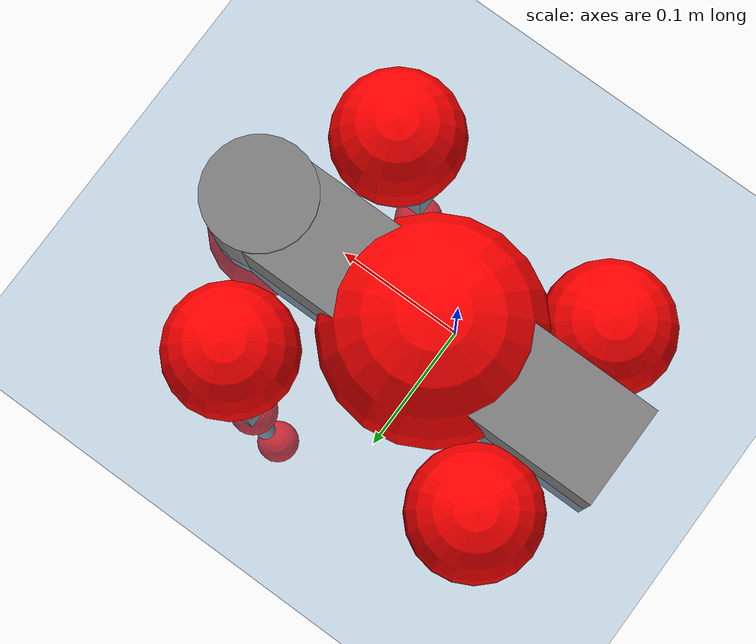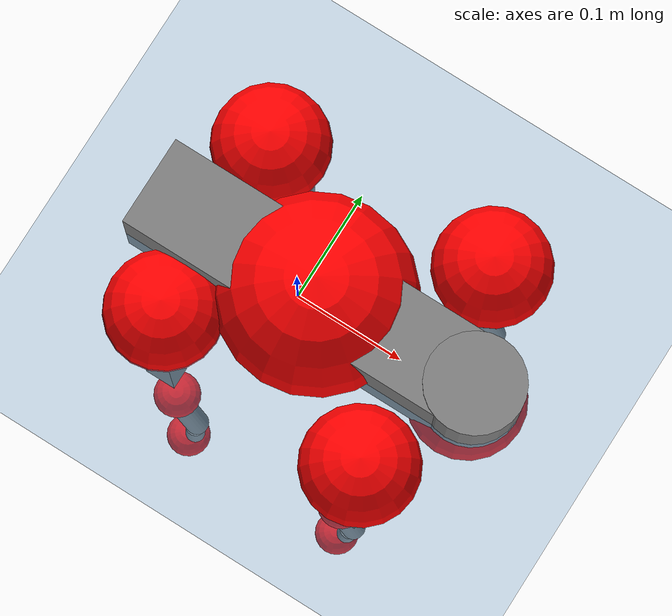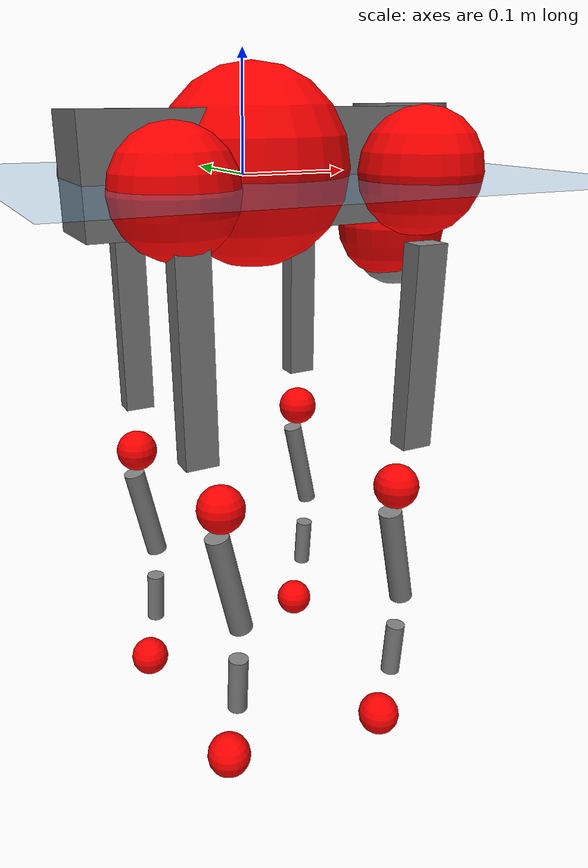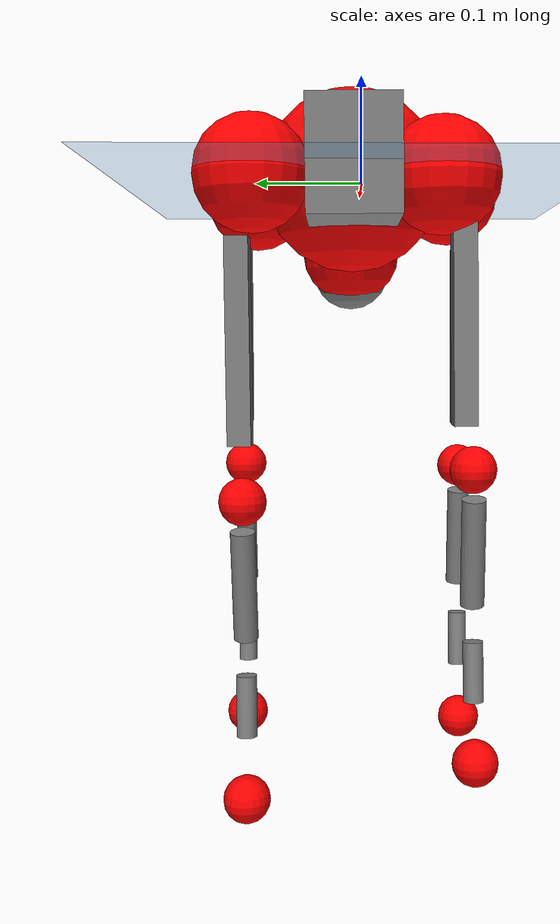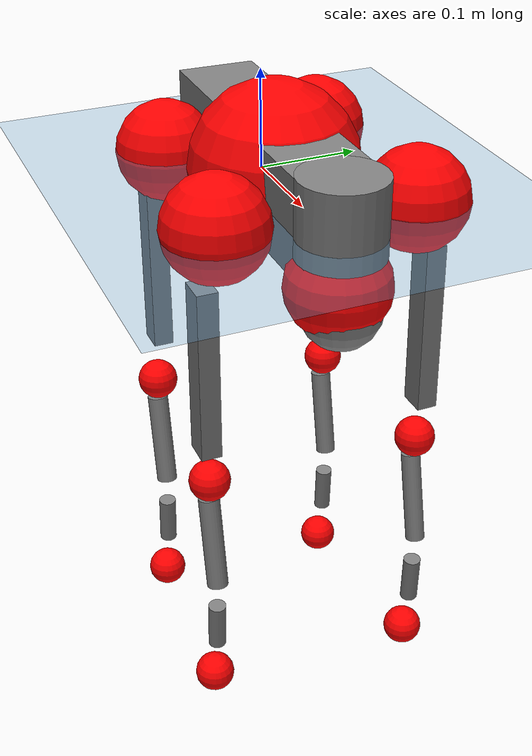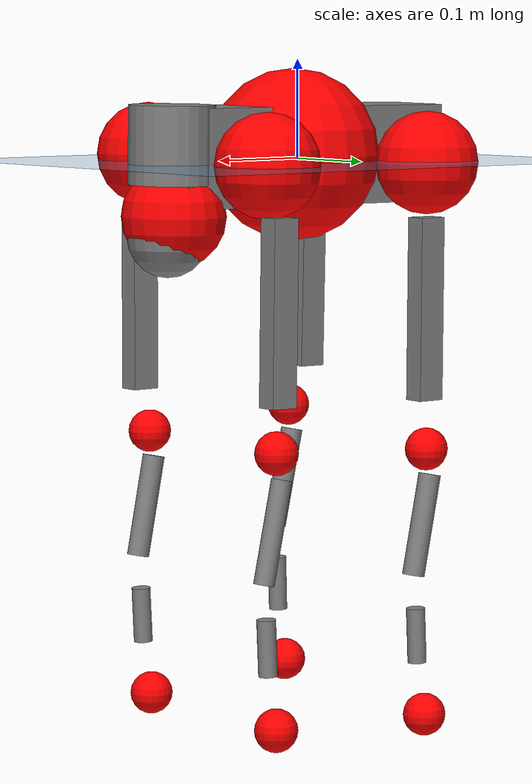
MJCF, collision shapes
<mujoco model="go2">
  <compiler angle="radian" assetdir="assets" balanceinertia="true" inertiafromgeom="false"/>

  <option timestep="0.005" density="1.2" viscosity="2e-05"/>

  <size nkey="1"/>

  <visual>
    <quality shadowsize="8192"/>
    <map shadowclip="0.5"/>
  </visual>

  <default>
    <default class="/">
      <geom contype="0" conaffinity="0" group="1" solref="-1000 -80"/>
      <site size="0.01 0.005 0.005" group="5"/>
      <general forcelimited="true" biastype="affine" gainprm="20" biasprm="0 -20 -0.5"/>
      <default class="go2">
        <joint armature="0.01" damping="0.01" frictionloss="0.2"/>
        <geom condim="1" margin="0.001"/>
        <default class="visual">
          <geom type="mesh" group="2"/>
        </default>
        <default class="collision">
          <geom group="3"/>
          <default class="foot">
            <geom size="0.022 0 0" condim="6" priority="1" friction="0.8 0.02 0.01" solimp="0.015 1 0.022"/>
          </default>
        </default>
        <default class="reward_collision_sphere">
          <geom group="5" rgba="1 0 0 1"/>
        </default>
      </default>
    </default>
  </default>

  <asset>
    <texture type="skybox" colorspace="auto" name="//unnamed_texture_0" builtin="gradient" rgb1="0.95 0.95 0.95" rgb2="0.95 0.95 0.95" width="100" height="600"/>
    <texture type="2d" colorspace="auto" name="texplane" builtin="checker" rgb1="0.345 0.575 0.748" rgb2="0.345 0.575 0.748" markrgb="1 1 1" width="512" height="512"/>
    <material name="MatPlane" class="/" texture="texplane" texuniform="true" texrepeat="2 2" specular="0.9"/>
    <material name="metal" class="/" rgba="0.9 0.95 0.95 1"/>
    <material name="black" class="/" rgba="0 0 0 1"/>
    <material name="white" class="/"/>
    <material name="gray" class="/" rgba="0.671705 0.692426 0.77427 1"/>
    <mesh name="base_0" class="/" file="base_0.obj"/>
    <mesh name="base_1" class="/" file="base_1.obj"/>
    <mesh name="base_2" class="/" file="base_2.obj"/>
    <mesh name="base_3" class="/" file="base_3.obj"/>
    <mesh name="base_4" class="/" file="base_4.obj"/>
    <mesh name="hip_0" class="/" file="hip_0.obj"/>
    <mesh name="hip_1" class="/" file="hip_1.obj"/>
    <mesh name="thigh_0" class="/" file="thigh_0.obj"/>
    <mesh name="thigh_1" class="/" file="thigh_1.obj"/>
    <mesh name="thigh_mirror_0" class="/" file="thigh_mirror_0.obj"/>
    <mesh name="thigh_mirror_1" class="/" file="thigh_mirror_1.obj"/>
    <mesh name="calf_0" class="/" file="calf_0.obj"/>
    <mesh name="calf_1" class="/" file="calf_1.obj"/>
    <mesh name="calf_mirror_0" class="/" file="calf_mirror_0.obj"/>
    <mesh name="calf_mirror_1" class="/" file="calf_mirror_1.obj"/>
    <mesh name="foot" class="/" file="foot.obj"/>
  </asset>

  <worldbody>
    <geom name="floor" class="/" size="100 100 0.125" type="plane" group="0" material="MatPlane"/>
    <light name="toplight_shadow" class="/" pos="0 0 5" dir="0.0990148 0.0990148 -0.990148" type="directional" ambient="0.04 0.04 0.04" diffuse="0.55 0.55 0.55" specular="0.12 0.12 0.12"/>
    <light name="toplight_fill" class="/" pos="0 0 5" dir="0.0990148 0.0990148 -0.990148" type="directional" castshadow="false" ambient="0.04 0.04 0.04" diffuse="0.3 0.3 0.3" specular="0.08 0.08 0.08"/>
    <body name="trunk" childclass="go2" pos="0.0129199 0.00873429 0.00484306" quat="0.999987 -0.00480069 -0.00185137 2.34804e-06">
      <inertial pos="0.024922 0.000421531 -0.00703661" quat="-0.0125799 0.714147 0.0186036 0.699635" mass="4.22568" diaginertia="0.0048606 0.0273433 0.0723756"/>
      <joint name="//unnamed_joint_0" type="free" armature="0" damping="0" frictionloss="0"/>
      <geom name="//unnamed_geom_1" class="visual" material="black" mesh="base_0"/>
      <geom name="//unnamed_geom_2" class="visual" material="black" mesh="base_1"/>
      <geom name="//unnamed_geom_3" class="visual" material="black" mesh="base_2"/>
      <geom name="//unnamed_geom_4" class="visual" material="white" mesh="base_3"/>
      <geom name="//unnamed_geom_5" class="visual" material="gray" mesh="base_4"/>
      <geom name="trunk_1" class="collision" size="0.162886 0.0404833 0.0493594" type="box"/>
      <geom name="trunk_2" class="collision" size="0.0432977 0.0389679" pos="0.152715 0 0.0128472" type="cylinder"/>
      <geom name="trunk_3" class="collision" size="0.0406998" pos="0.157002 0 -0.0770833"/>
      <geom name="//unnamed_geom_9" class="reward_collision_sphere" size="0.0865954"/>
      <geom name="//unnamed_geom_10" class="reward_collision_sphere" size="0.0519572" pos="0.150036 0 -0.0578125"/>
      <site name="imu" pos="-0.010153 -0.0224093 0.070704" size="0.00865954"/>
      <camera name="track" pos="0 -1.5546 0" quat="0.707107 0.707107 0 0" mode="trackcom"/>
      <camera name="ego_camera" pos="0.167183 0 0.0578125" quat="-0.5 -0.5 0.5 0.5"/>
      <body name="FL_hip" pos="0.111189 0.0439683 -0.00497645" quat="0.999979 0.00427387 -0.00482824 7.42233e-05">
        <inertial pos="0.0109586 0.00806345 0.00652618" quat="0.496199 0.499701 0.50568 0.498371" mass="0.383607" diaginertia="3.42161e-05 0.000167611 0.00132087"/>
        <joint name="FL_hip_joint" pos="0 0 0" axis="0.99997 -0.00363176 -0.00685481" stiffness="0.0274971" range="-1.04607 1.2693" armature="0.00447996" damping="0.0483146" frictionloss="0.127866"/>
        <geom name="//unnamed_geom_11" class="visual" material="metal" mesh="hip_0"/>
        <geom name="//unnamed_geom_12" class="visual" material="gray" mesh="hip_1"/>
        <geom name="//unnamed_geom_13" class="collision" size="0.0398339 0.0173191" pos="0 0.0621838 0" quat="0.707107 0.707107 0 0" type="cylinder"/>
        <geom name="//unnamed_geom_14" class="reward_collision_sphere" size="0.0519572" pos="0 0.0544108 0"/>
        <body name="FL_thigh" pos="-0.00172172 0.0720614 -0.00461023" quat="1 0.000344387 -0.000144593 0.000448175">
          <inertial pos="-0.0148767 -0.0178053 -0.05366" quat="0.829659 0.0848392 -0.0197038 0.551435" mass="0.787952" diaginertia="0.000268482 0.00161641 0.00330938"/>
          <joint name="FL_thigh_joint" pos="0 0 0" axis="-0.0143949 0.999501 -0.0281305" range="-1.36367 3.29751" armature="0.00463431" damping="0.0722039" frictionloss="0.119752"/>
          <geom name="//unnamed_geom_15" class="visual" material="metal" mesh="thigh_0"/>
          <geom name="//unnamed_geom_16" class="visual" material="gray" mesh="thigh_1"/>
          <geom name="//unnamed_geom_17" class="collision" size="0.092224 0.0106079 0.0147212" pos="0 0 -0.136823" quat="0.707107 0 0.707107 0" type="box"/>
          <body name="FL_calf" pos="-0.00143746 -0.00311845 -0.273694" quat="0.999992 0.00031633 0.00373997 -0.00149868">
            <inertial pos="-0.00395605 -0.0069837 -0.172297" quat="0.705498 0.0371725 0.0396764 0.706623" mass="0.149791" diaginertia="6.89775e-05 0.000381794 0.00020478"/>
            <joint name="FL_calf_joint" pos="0 0 0" axis="0.0141916 0.999814 -0.0130698" stiffness="0.00858509" range="-2.71836 -0.622886" armature="0.0119383" damping="0.000730943" frictionloss="0.183805"/>
            <geom name="//unnamed_geom_18" class="visual" material="gray" mesh="calf_0"/>
            <geom name="//unnamed_geom_19" class="visual" material="black" mesh="calf_1"/>
            <geom name="FL_calf0" class="collision" size="0.0103914 0.0519572" pos="0.00428673 0 -0.0770833" quat="0.994493 0 -0.104807 0" type="cylinder"/>
            <geom name="//unnamed_geom_21" class="collision" size="0.00952549 0.0281435" pos="0.0107168 0 -0.190139" quat="0.999688 0 0.0249974 0" type="cylinder"/>
            <geom name="//unnamed_geom_22" class="visual" pos="0 0 -0.273646" quat="1 0 0 0" material="black" mesh="foot"/>
            <geom name="FL_foot" class="foot" size="0.0171205" pos="-0.00107168 0 -0.273646"/>
            <geom name="//unnamed_geom_24" class="reward_collision_sphere" size="0.0216488"/>
            <geom name="//unnamed_geom_25" class="reward_collision_sphere" size="0.0216488" pos="-0.00107168 0 -0.273646"/>
            <site name="FL_foot" class="foot" pos="-0.00107168 0 -0.273646" size="0.00865954"/>
          </body>
        </body>
      </body>
      <body name="FR_hip" pos="0.106634 -0.0470125 -0.000873485" quat="0.999996 0.002047 7.55305e-05 -0.00204709">
        <inertial pos="-0.0128752 -0.00474745 0.000174694" quat="0.49951 0.504643 0.49858 0.497236" mass="0.319136" diaginertia="3.54701e-05 0.00015542 0.00164508"/>
        <joint name="FR_hip_joint" pos="0 0 0" axis="0.999924 0.00761785 0.00971157" stiffness="0.0557037" range="-1.18816 1.05517" armature="0.0144962" damping="0.00505646" frictionloss="0.0595747"/>
        <geom name="//unnamed_geom_26" class="visual" pos="0 -4.42047e-09 -1.89603e-07" quat="4.63268e-05 1 0 0" material="metal" mesh="hip_0"/>
        <geom name="//unnamed_geom_27" class="visual" pos="0 -7.16611e-09 4.68961e-07" quat="4.63268e-05 1 0 0" material="gray" mesh="hip_1"/>
        <geom name="//unnamed_geom_28" class="collision" size="0.0398339 0.0173191" pos="0 -0.0621838 0" quat="0.707107 0.707107 0 0" type="cylinder"/>
        <geom name="//unnamed_geom_29" class="reward_collision_sphere" size="0.0519572" pos="0 -0.0544108 0"/>
        <body name="FR_thigh" pos="0.000484454 -0.069368 -0.0115553" quat="0.99998 -0.00150818 0.00426328 0.00434618">
          <inertial pos="0.00705208 0.03098 -0.0385613" quat="0.546831 -0.0185459 0.0834078 0.832872" mass="0.927805" diaginertia="0.000281729 0.00186883 0.00366083"/>
          <joint name="FR_thigh_joint" pos="0 0 0" axis="0.00463292 -0.999965 0.00691661" stiffness="0.00122806" range="-3.4181 1.6628" armature="0.00899045" damping="0" frictionloss="0.12732"/>
          <geom name="//unnamed_geom_30" class="visual" material="metal" mesh="thigh_mirror_0"/>
          <geom name="//unnamed_geom_31" class="visual" material="gray" mesh="thigh_mirror_1"/>
          <geom name="//unnamed_geom_32" class="collision" size="0.092224 0.0106079 0.0147212" pos="0 0 -0.136823" quat="0.707107 0 0.707107 0" type="box"/>
          <body name="FR_calf" pos="-0.00824967 0.00500209 -0.273029" quat="1 -2.92207e-05 6.92426e-06 6.32531e-06">
            <inertial pos="-0.00314356 -0.000369319 -0.178391" quat="0.700481 -0.000230355 0.00350726 0.713663" mass="0.130755" diaginertia="4.93643e-05 0.000401571 0.000162317"/>
            <joint name="FR_calf_joint" pos="0 0 0" axis="-0.0495555 -0.998721 -0.00999716" stiffness="0.0362688" range="0.858361 2.73808" armature="0.00861215" damping="0" frictionloss="0.147512"/>
            <geom name="//unnamed_geom_33" class="visual" material="gray" mesh="calf_mirror_0"/>
            <geom name="//unnamed_geom_34" class="visual" material="black" mesh="calf_mirror_1"/>
            <geom name="FR_calf0" class="collision" size="0.0112574 0.0519572" pos="0.00535841 0 -0.0770833" quat="0.995004 0 -0.0998334 0" type="cylinder"/>
            <geom name="//unnamed_geom_36" class="collision" size="0.00952549 0.0281435" pos="0.0107168 0 -0.190139" quat="0.999688 0 0.0249974 0" type="cylinder"/>
            <geom name="//unnamed_geom_37" class="visual" pos="0 0 -0.273646" quat="1 0 0 0" material="black" mesh="foot"/>
            <geom name="FR_foot" class="foot" size="0.0158825" pos="-0.00107168 0 -0.273646"/>
            <geom name="//unnamed_geom_39" class="reward_collision_sphere" size="0.0216488"/>
            <geom name="//unnamed_geom_40" class="reward_collision_sphere" size="0.0216488" pos="-0.00107168 0 -0.273646"/>
            <site name="FR_foot" class="foot" pos="-0.00107168 0 -0.273646" size="0.00865954"/>
          </body>
        </body>
      </body>
      <body name="RL_hip" pos="-0.101985 0.0343862 -0.00713503" quat="0.999973 0.00219451 0.00231064 -0.00662152">
        <inertial pos="-0.0100485 0.0040786 -0.000710022" quat="0.504805 0.497782 0.497758 0.499621" mass="0.427584" diaginertia="3.91028e-05 0.000150197 0.00174994"/>
        <joint name="RL_hip_joint" pos="0 0 0" axis="-0.999918 0.00990797 -0.0080947" range="-1.0098 1.02528" armature="0.00849629" damping="0" frictionloss="0.132087"/>
        <geom name="//unnamed_geom_41" class="visual" pos="6.52393e-09 0 1.27884e-06" quat="4.63268e-05 0 1 0" material="metal" mesh="hip_0"/>
        <geom name="//unnamed_geom_42" class="visual" pos="1.05761e-08 0 1.13415e-06" quat="4.63268e-05 0 1 0" material="gray" mesh="hip_1"/>
        <geom name="//unnamed_geom_43" class="collision" size="0.0398339 0.0173191" pos="0 0.0621838 0" quat="0.707107 0.707107 0 0" type="cylinder"/>
        <geom name="//unnamed_geom_44" class="reward_collision_sphere" size="0.0519572" pos="0 0.0544108 0"/>
        <body name="RL_thigh" pos="0.012271 0.0689427 -0.00913438" quat="0.999981 -0.00180892 -0.0012584 0.00582518">
          <inertial pos="-0.00304475 -0.0153568 -0.0401371" quat="0.854854 0.0924482 0.00829298 0.510498" mass="0.851536" diaginertia="0.000252558 0.00186976 0.00293023"/>
          <joint name="RL_thigh_joint" pos="0 0 0" axis="0.0027639 0.999973 -0.00687692" stiffness="0.00294994" range="-0.497452 4.50448" armature="0.0118414" damping="0.0723929" frictionloss="0.210551"/>
          <geom name="//unnamed_geom_45" class="visual" material="metal" mesh="thigh_0"/>
          <geom name="//unnamed_geom_46" class="visual" material="gray" mesh="thigh_1"/>
          <geom name="//unnamed_geom_47" class="collision" size="0.092224 0.0106079 0.0147212" pos="0 0 -0.136823" quat="0.707107 0 0.707107 0" type="box"/>
          <body name="RL_calf" pos="-0.00477875 -0.00153417 -0.279722" quat="1 0.000360062 0.000125299 8.25013e-05">
            <inertial pos="0.0030384 0.000225537 -0.188789" quat="0.706799 0.00162159 -0.00477085 0.707396" mass="0.157229" diaginertia="6.57738e-05 0.000424551 0.000188515"/>
            <joint name="RL_calf_joint" pos="0 0 0" axis="-0.00273095 0.999921 0.0122514" stiffness="0.000863272" range="-2.66254 -0.849629" armature="0.0115413" damping="0.0625984" frictionloss="0.166381"/>
            <geom name="//unnamed_geom_48" class="visual" material="gray" mesh="calf_0"/>
            <geom name="//unnamed_geom_49" class="visual" material="black" mesh="calf_1"/>
            <geom name="RL_calf0" class="collision" size="0.0112574 0.0519572" pos="0.00535841 0 -0.0770833" quat="0.995004 0 -0.0998334 0" type="cylinder"/>
            <geom name="//unnamed_geom_51" class="collision" size="0.00952549 0.0281435" pos="0.0107168 0 -0.190139" quat="0.999688 0 0.0249974 0" type="cylinder"/>
            <geom name="//unnamed_geom_52" class="visual" pos="0 0 -0.273646" quat="1 0 0 0" material="black" mesh="foot"/>
            <geom name="RL_foot" class="foot" size="0.0129203" pos="-0.00107168 0 -0.273646"/>
            <geom name="//unnamed_geom_54" class="reward_collision_sphere" size="0.0216488"/>
            <geom name="//unnamed_geom_55" class="reward_collision_sphere" size="0.0216488" pos="-0.00107168 0 -0.273646"/>
            <site name="RL_foot" class="foot" pos="-0.00107168 0 -0.273646" size="0.00865954"/>
          </body>
        </body>
      </body>
      <body name="RR_hip" pos="-0.101614 -0.0236426 -0.0100034" quat="0.99999 -0.000126317 -0.00351296 0.00273895">
        <inertial pos="0.0011026 -0.0115318 0.000611733" quat="0.523524 0.528914 0.478171 0.466397" mass="0.436937" diaginertia="3.51315e-05 0.000150779 0.00176331"/>
        <joint name="RR_hip_joint" pos="0 0 0" axis="-0.99995 -0.00763166 0.00653416" range="-1.08163 1.05203" armature="0.00252913" damping="0" frictionloss="0.270141"/>
        <geom name="//unnamed_geom_56" class="visual" pos="-6.51557e-09 -4.42047e-09 1.46844e-06" quat="2.14617e-09 4.63268e-05 4.63268e-05 -1" material="metal" mesh="hip_0"/>
        <geom name="//unnamed_geom_57" class="visual" pos="-1.05968e-08 -7.16611e-09 6.65189e-07" quat="2.14617e-09 4.63268e-05 4.63268e-05 -1" material="gray" mesh="hip_1"/>
        <geom name="//unnamed_geom_58" class="collision" size="0.0398339 0.0173191" pos="0 -0.0621838 0" quat="0.707107 0.707107 0 0" type="cylinder"/>
        <geom name="//unnamed_geom_59" class="reward_collision_sphere" size="0.0519572" pos="0 -0.0544108 0"/>
        <body name="RR_thigh" pos="0.00151671 -0.0724265 0.0104633" quat="0.999996 -0.00190685 -0.0002693 -0.0020278">
          <inertial pos="-0.00289753 0.023369 -0.0416886" quat="0.551848 -0.0252057 0.0884642 0.828856" mass="0.850406" diaginertia="0.000295898 0.0017253 0.00373543"/>
          <joint name="RR_thigh_joint" pos="0 0 0" axis="0.0552572 -0.998373 -0.0140943" stiffness="0.0422516" range="-4.29923 0.372573" armature="0.00595586" damping="0.0171132" frictionloss="0.200472"/>
          <geom name="//unnamed_geom_60" class="visual" material="metal" mesh="thigh_mirror_0"/>
          <geom name="//unnamed_geom_61" class="visual" material="gray" mesh="thigh_mirror_1"/>
          <geom name="//unnamed_geom_62" class="collision" size="0.092224 0.0106079 0.0147212" pos="0 0 -0.136823" quat="0.707107 0 0.707107 0" type="box"/>
          <body name="RR_calf" pos="0.0150668 -0.0093186 -0.2711" quat="1 -0.000856678 0.000384474 -0.000319663">
            <inertial pos="-0.010873 -0.001582 -0.18854" quat="0.693629 -0.00109968 -0.0181395 0.720103" mass="0.151182" diaginertia="7.02024e-05 0.00053923 0.000194382"/>
            <joint name="RR_calf_joint" pos="0 0 0" axis="-0.00923832 -0.999957 -0.00098072" stiffness="0.00456938" range="0.655612 2.43184" armature="0.0133962" damping="0.00146475" frictionloss="0.144336"/>
            <geom name="//unnamed_geom_63" class="visual" material="gray" mesh="calf_mirror_0"/>
            <geom name="//unnamed_geom_64" class="visual" material="black" mesh="calf_mirror_1"/>
            <geom name="RR_calf0" class="collision" size="0.0112574 0.0519572" pos="0.00535841 0 -0.0770833" quat="0.995004 0 -0.0998334 0" type="cylinder"/>
            <geom name="//unnamed_geom_66" class="collision" size="0.00952549 0.0281435" pos="0.0107168 0 -0.190139" quat="0.999688 0 0.0249974 0" type="cylinder"/>
            <geom name="//unnamed_geom_67" class="visual" pos="0 0 -0.273646" quat="1 0 0 0" material="black" mesh="foot"/>
            <geom name="RR_foot" class="foot" size="0.0196533" pos="-0.00107168 0 -0.273646"/>
            <geom name="//unnamed_geom_69" class="reward_collision_sphere" size="0.0216488"/>
            <geom name="//unnamed_geom_70" class="reward_collision_sphere" size="0.0216488" pos="-0.00107168 0 -0.273646"/>
            <site name="RR_foot" class="foot" pos="-0.00107168 0 -0.273646" size="0.00865954"/>
          </body>
        </body>
      </body>
    </body>
  </worldbody>

  <contact>
    <pair class="/" geom1="floor" geom2="FL_foot" name="//unnamed_contact_0"/>
    <pair class="/" geom1="floor" geom2="FR_foot" name="//unnamed_contact_1"/>
    <pair class="/" geom1="floor" geom2="RL_foot" name="//unnamed_contact_2"/>
    <pair class="/" geom1="floor" geom2="RR_foot" name="//unnamed_contact_3"/>
  </contact>

  <actuator>
    <general name="FL_hip" class="/" joint="FL_hip_joint" forcerange="-20.4243 20.4243" gainprm="17.1323" biasprm="0 -17.1323 -0.433107"/>
    <general name="FL_thigh" class="/" joint="FL_thigh_joint" forcerange="-25.5247 25.5247" gainprm="17.1323" biasprm="0 -17.1323 -0.433107"/>
    <general name="FL_calf" class="/" joint="FL_calf_joint" forcerange="-41.3082 41.3082" gainprm="17.1323" biasprm="0 -17.1323 -0.433107"/>
    <general name="FR_hip" class="/" joint="FR_hip_joint" forcerange="-9.78479 9.78479" gainprm="17.1323" biasprm="0 -17.1323 -0.433107"/>
    <general name="FR_thigh" class="/" joint="FR_thigh_joint" forcerange="-19.5988 19.5988" gainprm="17.1323" biasprm="0 -17.1323 -0.433107"/>
    <general name="FR_calf" class="/" joint="FR_calf_joint" forcerange="-53.1498 53.1498" gainprm="17.1323" biasprm="0 -17.1323 -0.433107"/>
    <general name="RL_hip" class="/" joint="RL_hip_joint" forcerange="-21.1567 21.1567" gainprm="17.1323" biasprm="0 -17.1323 -0.433107"/>
    <general name="RL_thigh" class="/" joint="RL_thigh_joint" forcerange="-21.2758 21.2758" gainprm="17.1323" biasprm="0 -17.1323 -0.433107"/>
    <general name="RL_calf" class="/" joint="RL_calf_joint" forcerange="-40.0121 40.0121" gainprm="17.1323" biasprm="0 -17.1323 -0.433107"/>
    <general name="RR_hip" class="/" joint="RR_hip_joint" forcerange="-19.8245 19.8245" gainprm="17.1323" biasprm="0 -17.1323 -0.433107"/>
    <general name="RR_thigh" class="/" joint="RR_thigh_joint" forcerange="-23.495 23.495" gainprm="17.1323" biasprm="0 -17.1323 -0.433107"/>
    <general name="RR_calf" class="/" joint="RR_calf_joint" forcerange="-21.7291 21.7291" gainprm="17.1323" biasprm="0 -17.1323 -0.433107"/>
  </actuator>

  <sensor>
    <gyro site="imu" name="imu_angular_velocity"/>
    <velocimeter site="imu" name="imu_linear_velocity"/>
    <framelinvel objtype="site" objname="FL_foot" name="FL_foot_global_linear_velocity"/>
    <framelinvel objtype="site" objname="FR_foot" name="FR_foot_global_linear_velocity"/>
    <framelinvel objtype="site" objname="RL_foot" name="RL_foot_global_linear_velocity"/>
    <framelinvel objtype="site" objname="RR_foot" name="RR_foot_global_linear_velocity"/>
  </sensor>

  <keyframe>
    <key name="home" qpos="0 0 0.325 1 0 0 0 0.1 0.8 -1.5 -0.1 -0.8 1.5 -0.1 0.8 -1.5 0.1 -0.8 1.5"/>
  </keyframe>
</mujoco>
